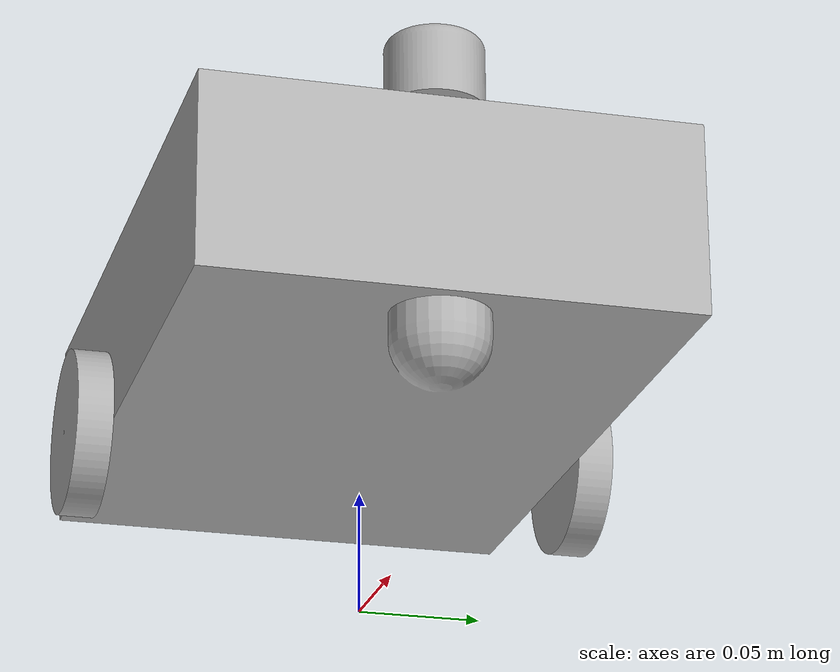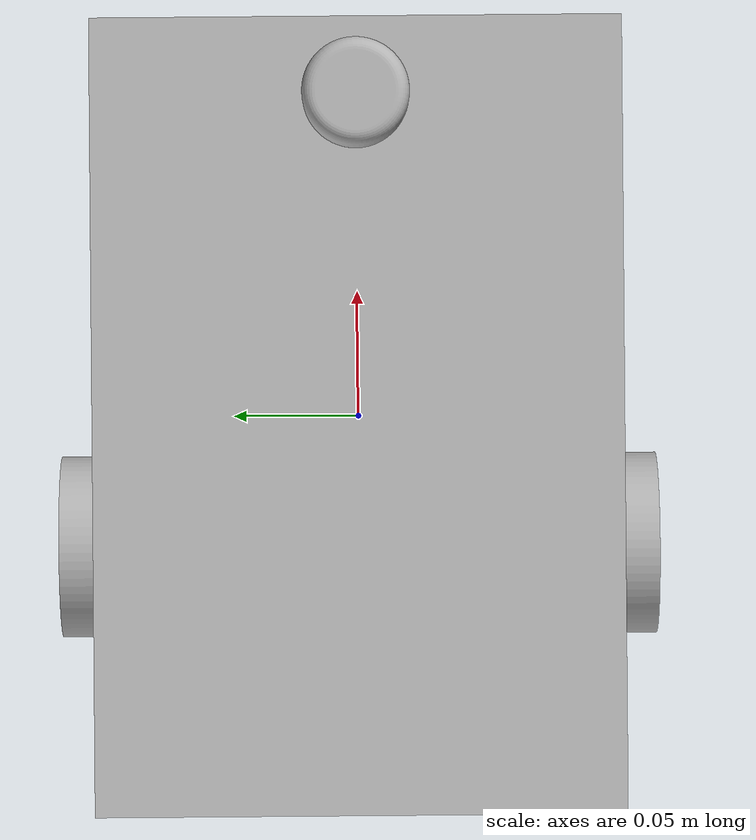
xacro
<?xml version="1.0" ?>
<robot name="robot" xmlns:xacro="http://www.ros.org/wiki/xacro">

<xacro:include filename="$(find robot_description)/urdf/materials.xacro" />
<xacro:include filename="$(find robot_description)/urdf/xbotversionnine.trans" />
<xacro:include filename="$(find robot_description)/urdf/xbotversionnine.gazebo" />

    <link name="base_footprint"/>

    <joint name="base_footprint_joint" type="fixed">
        <parent link="base_footprint"/>
        <child link="base_link"/>
        <origin xyz="0 0 0.05" rpy="0 0 0"/>
    </joint>

<link name="base_link">
  <inertial>
    <origin xyz="0.0011593171126529677 -1.3178630838856942e-16 0.06898953191622749" rpy="0 0 0"/>
    <mass value="7.584510784696534"/>
    <inertia ixx="0.042897" iyy="0.080327" izz="0.106968" ixy="0.0" iyz="-0.0" ixz="0.000502"/>
  </inertial>
  <visual>
    <origin xyz="0 0 0" rpy="0 0 0"/>
    <geometry>
      <mesh filename="package://robot_description/meshes/base_link.stl" scale="0.001 0.001 0.001"/>
    </geometry>
    <material name="silver"/>
  </visual>
  <collision>
    <origin xyz="0 0 0" rpy="0 0 0"/>
    <geometry>
      <mesh filename="package://robot_description/meshes/base_link.stl" scale="0.001 0.001 0.001"/>
    </geometry>
  </collision>
</link>

<link name="lidar_1">
  <inertial>
    <origin xyz="2.7755575615628914e-17 -3.83428761049415e-18 0.014762029367898347" rpy="0 0 0"/>
    <mass value="0.2909411626008902"/>
    <inertia ixx="5e-05" iyy="5e-05" izz="5.7e-05" ixy="0.0" iyz="-0.0" ixz="0.0"/>
  </inertial>
  <visual>
    <origin xyz="-0.12 -0.0 -0.108" rpy="0 0 0"/>
    <geometry>
      <mesh filename="package://robot_description/meshes/lidar_1.stl" scale="0.001 0.001 0.001"/>
    </geometry>
    <material name="silver"/>
  </visual>
  <collision>
    <origin xyz="-0.12 -0.0 -0.108" rpy="0 0 0"/>
    <geometry>
      <mesh filename="package://robot_description/meshes/lidar_1.stl" scale="0.001 0.001 0.001"/>
    </geometry>
  </collision>
</link>

<link name="right_wheel_1">
  <inertial>
    <origin xyz="-8.326672684688674e-17 -0.007500000000000007 -6.938893903907228e-18" rpy="0 0 0"/>
    <mass value="0.45278518279128266"/>
    <inertia ixx="0.000147" iyy="0.000278" izz="0.000147" ixy="0.0" iyz="-0.0" ixz="-0.0"/>
  </inertial>
  <visual>
    <origin xyz="0.05 0.1 -0.035" rpy="0 0 0"/>
    <geometry>
      <mesh filename="package://robot_description/meshes/right_wheel_1.stl" scale="0.001 0.001 0.001"/>
    </geometry>
    <material name="silver"/>
  </visual>
  <collision>
    <origin xyz="0.05 0.1 -0.035" rpy="0 0 0"/>
    <geometry>
      <mesh filename="package://robot_description/meshes/right_wheel_1.stl" scale="0.001 0.001 0.001"/>
    </geometry>
  </collision>
</link>

<link name="left_wheel_1">
  <inertial>
    <origin xyz="8.326672684688674e-17 0.007499999999999979 0.0" rpy="0 0 0"/>
    <mass value="0.4527851827912825"/>
    <inertia ixx="0.000147" iyy="0.000278" izz="0.000147" ixy="0.0" iyz="-0.0" ixz="0.0"/>
  </inertial>
  <visual>
    <origin xyz="0.05 -0.1 -0.035" rpy="0 0 0"/>
    <geometry>
      <mesh filename="package://robot_description/meshes/left_wheel_1.stl" scale="0.001 0.001 0.001"/>
    </geometry>
    <material name="silver"/>
  </visual>
  <collision>
    <origin xyz="0.05 -0.1 -0.035" rpy="0 0 0"/>
    <geometry>
      <mesh filename="package://robot_description/meshes/left_wheel_1.stl" scale="0.001 0.001 0.001"/>
    </geometry>
  </collision>
</link>

<link name="imu_link">
  <inertial>
    <mass value="0.001"/>
    <origin rpy="0 0 0" xyz="0 0 0"/>
    <inertia ixx="0.0001" ixy="0" ixz="0" iyy="0.000001" iyz="0" izz="0.0001"/>
  </inertial>
  <visual>
    <origin rpy="0 0 0" xyz="0 0 0"/>
    <geometry>
      <box size="0.01 0.01 0.01"/>
    </geometry>
  </visual>
  <collision>
    <origin rpy="0 0 0" xyz="0 0 0"/>
    <geometry>
      <box size=".01 .01 .01"/>
    </geometry>
  </collision>
</link>

<joint name="imu_joint" type="fixed">
    <axis xyz="1 0 0"/>
    <origin xyz="0.1 0 0.1"/>
    <parent link="base_link"/>
    <child link="imu_link"/>
  </joint>

<joint name="Rigid1" type="fixed">
  <origin xyz="0.12 0.0 0.118" rpy="0 0 0"/>
  <parent link="base_link"/>
  <child link="lidar_1"/>
</joint>

<joint name="Rev2" type="continuous">
  <origin xyz="-0.05 -0.1 0.035" rpy="0 0 0"/>
  <parent link="base_link"/>
  <child link="right_wheel_1"/>
  <axis xyz="0.0 1.0 0.0"/>
</joint>

<joint name="Rev3" type="continuous">
  <origin xyz="-0.05 0.1 0.035" rpy="0 0 0"/>
  <parent link="base_link"/>
  <child link="left_wheel_1"/>
  <axis xyz="0.0 1.0 0.0"/>
</joint>

</robot>

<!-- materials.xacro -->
<robot name="xbotversionnine" xmlns:xacro="http://www.ros.org/wiki/xacro" >

<material name="silver">
  <color rgba="0.700 0.700 0.700 1.000"/>
</material>

</robot>

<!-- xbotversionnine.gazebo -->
<robot name="xbotversionnine" xmlns:xacro="http://www.ros.org/wiki/xacro" >

<xacro:property name="body_color" value="Gazebo/Red" />
<xacro:property name="lidar_color" value="Gazebo/Brown" />
<xacro:property name="caster_color" value="Gazebo/Grey" />
<xacro:property name="wheel_color" value="Gazebo/Black" />
<xacro:property name="imu_color" value="Gazebo/Yellow"/>

<gazebo>
  <plugin name="control" filename="libgazebo_ros_control.so"/>
</gazebo>
<gazebo reference="base_link">
  <material>${body_color}</material>
  <mu1>0.2</mu1>
  <mu2>0.2</mu2>
  <selfCollide>true</selfCollide>
  <gravity>true</gravity>
</gazebo>

<gazebo reference="lidar_1">
  <material>${lidar_color}</material>
  <mu1>0.2</mu1>
  <mu2>0.2</mu2>
  <selfCollide>true</selfCollide>
</gazebo>

<gazebo reference="right_wheel_1">
  <material>${wheel_color}</material>
  <mu1>2</mu1>
  <mu2>2</mu2>
  <selfCollide>true</selfCollide>
</gazebo>

<gazebo reference="left_wheel_1">
  <material>${wheel_color}</material>
  <mu1>2</mu1>
  <mu2>2</mu2>
  <selfCollide>true</selfCollide>
</gazebo>

<!--plugins all -->
<gazebo>
  <plugin name="differential_drive_controller" filename="libgazebo_ros_diff_drive.so">

    <!-- Plugin update rate in Hz -->
    <updateRate>20</updateRate>

    <!-- Name of left joint, defaults to `left_joint` -->
    <leftJoint>Rev3</leftJoint>

    <!-- Name of right joint, defaults to `right_joint` -->
    <rightJoint>Rev2</rightJoint>

    <!-- The distance from the center of one wheel to the other, in meters, defaults to 0.34 m -->
    <wheelSeparation>0.215</wheelSeparation>

    <!-- Diameter of the wheels, in meters, defaults to 0.15 m -->
    <wheelDiameter>0.07</wheelDiameter>

    <!-- Wheel acceleration, in rad/s^2, defaults to 0.0 rad/s^2 -->
    <wheelAcceleration>1.0</wheelAcceleration>

    <!-- Maximum torque which the wheels can produce, in Nm, defaults to 5 Nm -->
    <wheelTorque>5</wheelTorque>

    <!-- Topic to receive geometry_msgs/Twist message commands, defaults to `cmd_vel` -->
    <commandTopic>cmd_vel</commandTopic>

    <!-- Topic to publish nav_msgs/Odometry messages, defaults to `odom` -->
    <odometryTopic>odom</odometryTopic>

    <!-- Odometry frame, defaults to `odom` -->
    <odometryFrame>odom</odometryFrame>

    <!-- Robot frame to calculate odometry from, defaults to `base_footprint` -->
    <robotBaseFrame>base_footprint</robotBaseFrame>

    <!-- Odometry source, 0 for ENCODER, 1 for WORLD, defaults to WORLD -->
    <odometrySource>1</odometrySource>

    <!-- Set to true to publish transforms for the wheel links, defaults to false -->
    <publishWheelTF>false</publishWheelTF>

    <!-- Set to true to publish transforms for the odometry, defaults to true -->
    <publishOdom>true</publishOdom>
    <publishOdomTF>true</publishOdomTF>

    <!-- Set to true to publish sensor_msgs/JointState on /joint_states for the wheel joints, defaults to false -->
    <publishWheelJointState>true</publishWheelJointState>

    <!-- Set to true to swap right and left wheels, defaults to true -->
    <legacyMode>false</legacyMode>
  </plugin>
</gazebo>
  <gazebo reference="imu_link">
    <gravity>true</gravity>
    <sensor name="imu_sensor" type="imu">
      <always_on>true</always_on>
      <update_rate>100</update_rate>
      <visualize>true</visualize>
      <topic>__default_topic__</topic>
      <plugin filename="libgazebo_ros_imu_sensor.so" name="imu_plugin">
        <topicName>imu</topicName>
        <bodyName>imu_link</bodyName>
        <updateRateHZ>10.0</updateRateHZ>
        <gaussianNoise>0.0</gaussianNoise>
        <xyzOffset>0 0 0</xyzOffset>
        <rpyOffset>0 0 0</rpyOffset>
        <frameName>imu_link</frameName>
        <initialOrientationAsReference>false</initialOrientationAsReference>
      </plugin>
      <pose>0 0 0 0 0 0</pose>
    </sensor>
  </gazebo>

<gazebo reference="lidar_1">
    <sensor type="ray" name="head_hokuyo_sensor">
      <pose>0 0 0 0 0 0</pose>
      <visualize>false</visualize>
      <update_rate>20</update_rate>
      <ray>
        <scan>
          <horizontal>
            <samples>720</samples>
            <resolution>1</resolution>
            <min_angle>-3.141</min_angle>
            <max_angle>3.141</max_angle>
          </horizontal>
        </scan>
        <range>
          <min>0.03</min>
          <max>15.0</max>
          <resolution>0.1</resolution>
        </range>
        <noise>
          <type>gaussian</type>
          <mean>0.0</mean>
          <stddev>0.01</stddev>
        </noise>
      </ray>
      <plugin name="gazebo_ros_head_hokuyo_controller" filename="libgazebo_ros_laser.so">
        <topicName>/scan</topicName>
        <frameName>lidar_1</frameName>
      </plugin>
    </sensor>
  </gazebo>

</robot>
